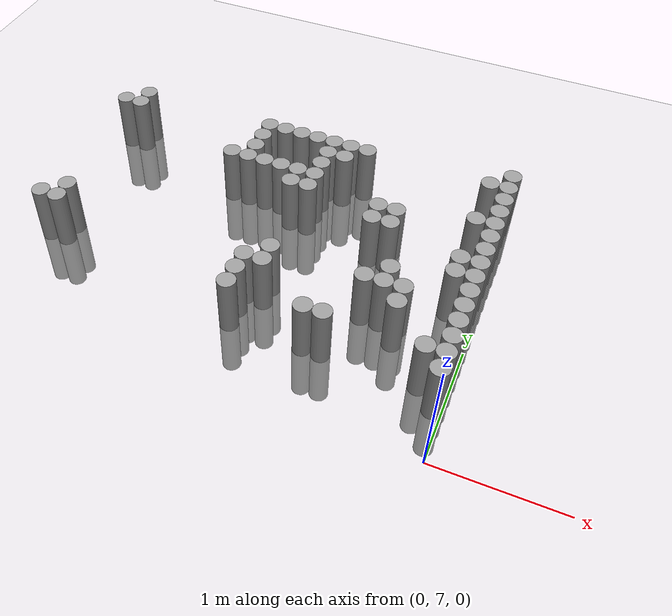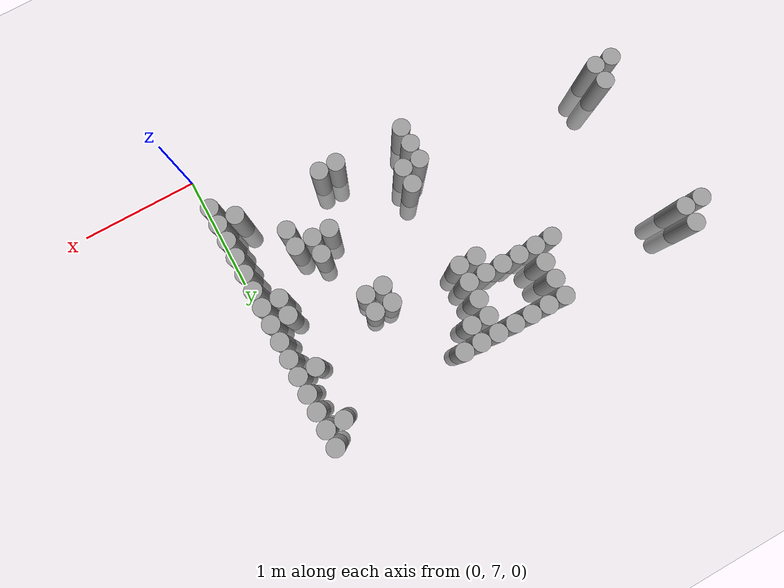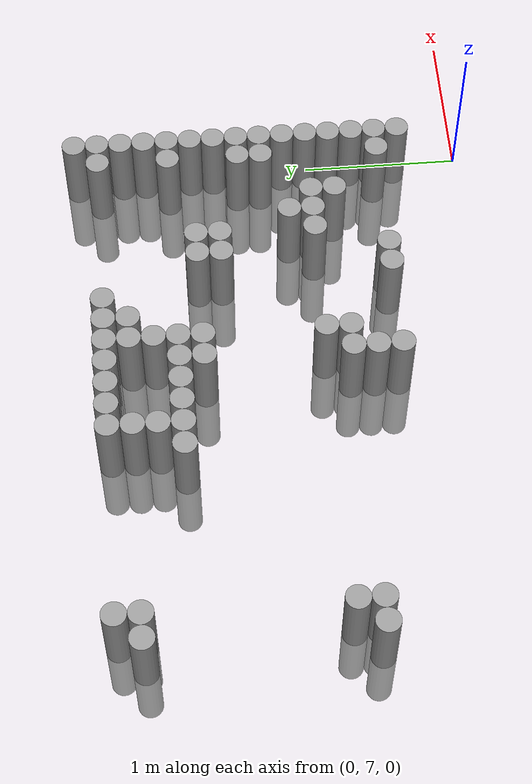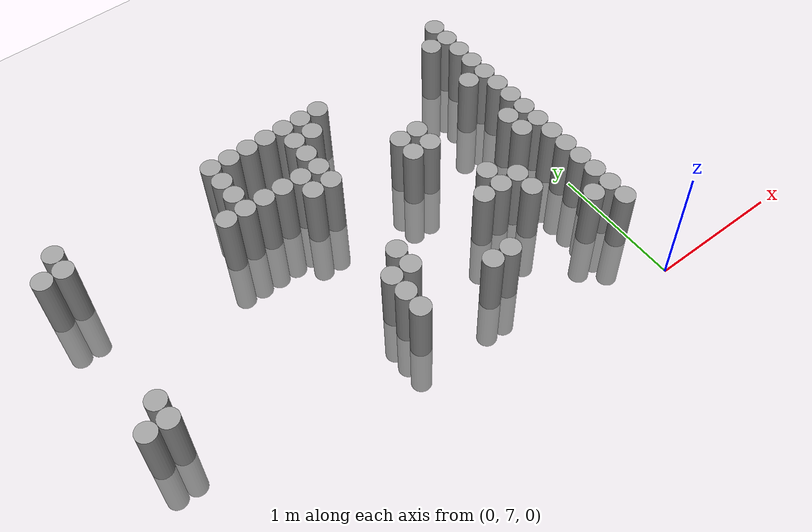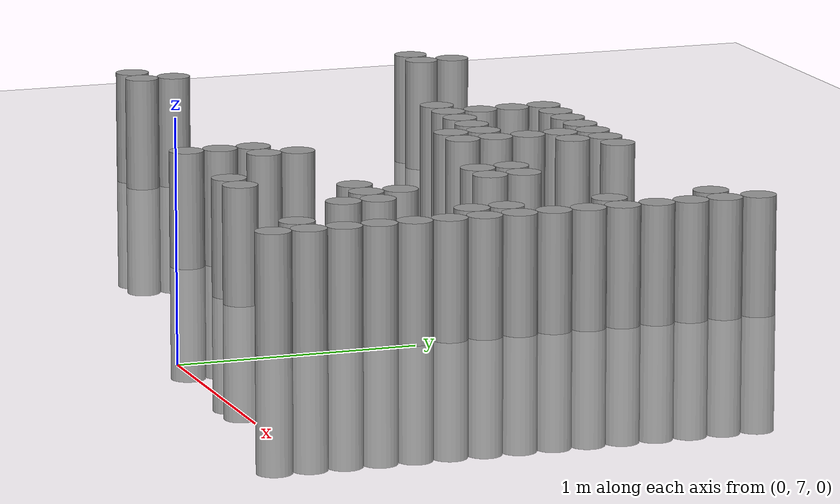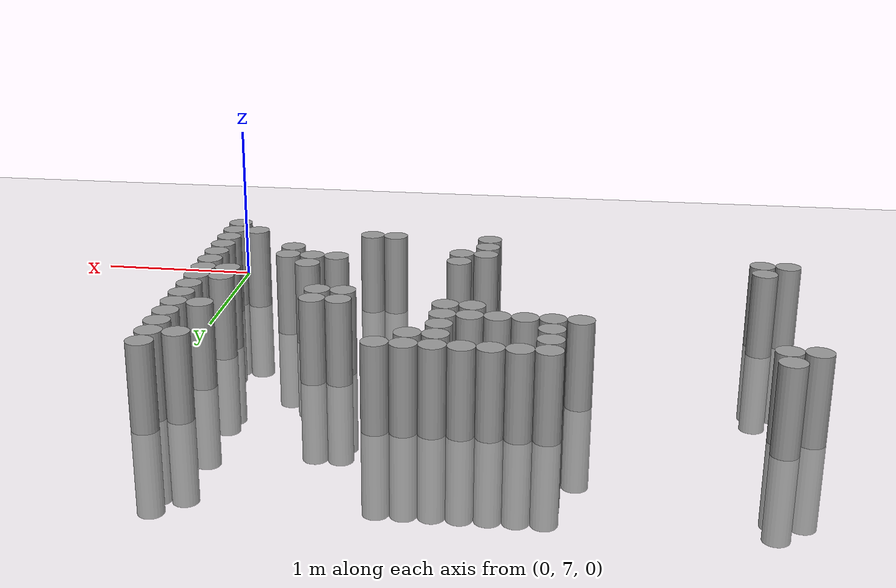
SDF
<sdf version="1.6">
 <world name="default">
  <model name="ground_plane">
   <static>1</static>
   <link name="link">
    <collision name="collision">
     <geometry><plane><normal>0 0 1</normal><size>100 100</size></plane></geometry>
     <surface><friction><ode><mu>100</mu><mu2>50</mu2></ode></friction></surface>
    </collision>
    <visual name="visual">
     <cast_shadows>0</cast_shadows>
     <geometry><plane><normal>0 0 1</normal><size>100 100</size></plane></geometry>
     <material>
      <script><uri>file://media/materials/scripts/gazebo.material</uri><name>Gazebo/Grey</name></script>
     </material>
    </visual>
   </link>
  </model>
  <model name="unit_cylinder_169">
   <pose>-3.525000 7.875000 0.000000 0.000000 0.000000 0.000000</pose>
   <link name="link">
    <inertial>
     <mass>1</mass>
     <inertia><ixx>0.145833</ixx><ixy>0</ixy><ixz>0</ixz><iyy>0.145833</iyy><iyz>0</iyz><izz>0.125</izz></inertia>
    </inertial>
    <collision name="collision">
     <geometry><cylinder><radius>0.075000</radius><length>1</length></cylinder></geometry>
    </collision>
    <visual name="visual">
     <geometry><cylinder><radius>0.075000</radius><length>1</length></cylinder></geometry>
     <material>
      <script><name>Gazebo/Grey</name><uri>file://media/materials/scripts/gazebo.material</uri></script>
     </material>
    </visual>
   </link>
  </model>
  <model name="unit_cylinder_170">
   <pose>-3.525000 9.225000 0.000000 0.000000 0.000000 0.000000</pose>
   <link name="link">
    <inertial>
     <mass>1</mass>
     <inertia><ixx>0.145833</ixx><ixy>0</ixy><ixz>0</ixz><iyy>0.145833</iyy><iyz>0</iyz><izz>0.125</izz></inertia>
    </inertial>
    <collision name="collision">
     <geometry><cylinder><radius>0.075000</radius><length>1</length></cylinder></geometry>
    </collision>
    <visual name="visual">
     <geometry><cylinder><radius>0.075000</radius><length>1</length></cylinder></geometry>
     <material>
      <script><name>Gazebo/Grey</name><uri>file://media/materials/scripts/gazebo.material</uri></script>
     </material>
    </visual>
   </link>
  </model>
  <model name="unit_cylinder_176">
   <pose>-3.375000 7.875000 0.000000 0.000000 0.000000 0.000000</pose>
   <link name="link">
    <inertial>
     <mass>1</mass>
     <inertia><ixx>0.145833</ixx><ixy>0</ixy><ixz>0</ixz><iyy>0.145833</iyy><iyz>0</iyz><izz>0.125</izz></inertia>
    </inertial>
    <collision name="collision">
     <geometry><cylinder><radius>0.075000</radius><length>1</length></cylinder></geometry>
    </collision>
    <visual name="visual">
     <geometry><cylinder><radius>0.075000</radius><length>1</length></cylinder></geometry>
     <material>
      <script><name>Gazebo/Grey</name><uri>file://media/materials/scripts/gazebo.material</uri></script>
     </material>
    </visual>
   </link>
  </model>
  <model name="unit_cylinder_177">
   <pose>-3.375000 8.025000 0.000000 0.000000 0.000000 0.000000</pose>
   <link name="link">
    <inertial>
     <mass>1</mass>
     <inertia><ixx>0.145833</ixx><ixy>0</ixy><ixz>0</ixz><iyy>0.145833</iyy><iyz>0</iyz><izz>0.125</izz></inertia>
    </inertial>
    <collision name="collision">
     <geometry><cylinder><radius>0.075000</radius><length>1</length></cylinder></geometry>
    </collision>
    <visual name="visual">
     <geometry><cylinder><radius>0.075000</radius><length>1</length></cylinder></geometry>
     <material>
      <script><name>Gazebo/Grey</name><uri>file://media/materials/scripts/gazebo.material</uri></script>
     </material>
    </visual>
   </link>
  </model>
  <model name="unit_cylinder_178">
   <pose>-3.375000 9.225000 0.000000 0.000000 0.000000 0.000000</pose>
   <link name="link">
    <inertial>
     <mass>1</mass>
     <inertia><ixx>0.145833</ixx><ixy>0</ixy><ixz>0</ixz><iyy>0.145833</iyy><iyz>0</iyz><izz>0.125</izz></inertia>
    </inertial>
    <collision name="collision">
     <geometry><cylinder><radius>0.075000</radius><length>1</length></cylinder></geometry>
    </collision>
    <visual name="visual">
     <geometry><cylinder><radius>0.075000</radius><length>1</length></cylinder></geometry>
     <material>
      <script><name>Gazebo/Grey</name><uri>file://media/materials/scripts/gazebo.material</uri></script>
     </material>
    </visual>
   </link>
  </model>
  <model name="unit_cylinder_179">
   <pose>-3.375000 9.375000 0.000000 0.000000 0.000000 0.000000</pose>
   <link name="link">
    <inertial>
     <mass>1</mass>
     <inertia><ixx>0.145833</ixx><ixy>0</ixy><ixz>0</ixz><iyy>0.145833</iyy><iyz>0</iyz><izz>0.125</izz></inertia>
    </inertial>
    <collision name="collision">
     <geometry><cylinder><radius>0.075000</radius><length>1</length></cylinder></geometry>
    </collision>
    <visual name="visual">
     <geometry><cylinder><radius>0.075000</radius><length>1</length></cylinder></geometry>
     <material>
      <script><name>Gazebo/Grey</name><uri>file://media/materials/scripts/gazebo.material</uri></script>
     </material>
    </visual>
   </link>
  </model>
  <model name="unit_cylinder_183">
   <pose>-2.325000 8.925000 0.000000 0.000000 0.000000 0.000000</pose>
   <link name="link">
    <inertial>
     <mass>1</mass>
     <inertia><ixx>0.145833</ixx><ixy>0</ixy><ixz>0</ixz><iyy>0.145833</iyy><iyz>0</iyz><izz>0.125</izz></inertia>
    </inertial>
    <collision name="collision">
     <geometry><cylinder><radius>0.075000</radius><length>1</length></cylinder></geometry>
    </collision>
    <visual name="visual">
     <geometry><cylinder><radius>0.075000</radius><length>1</length></cylinder></geometry>
     <material>
      <script><name>Gazebo/Grey</name><uri>file://media/materials/scripts/gazebo.material</uri></script>
     </material>
    </visual>
   </link>
  </model>
  <model name="unit_cylinder_189">
   <pose>-2.175000 8.925000 0.000000 0.000000 0.000000 0.000000</pose>
   <link name="link">
    <inertial>
     <mass>1</mass>
     <inertia><ixx>0.145833</ixx><ixy>0</ixy><ixz>0</ixz><iyy>0.145833</iyy><iyz>0</iyz><izz>0.125</izz></inertia>
    </inertial>
    <collision name="collision">
     <geometry><cylinder><radius>0.075000</radius><length>1</length></cylinder></geometry>
    </collision>
    <visual name="visual">
     <geometry><cylinder><radius>0.075000</radius><length>1</length></cylinder></geometry>
     <material>
      <script><name>Gazebo/Grey</name><uri>file://media/materials/scripts/gazebo.material</uri></script>
     </material>
    </visual>
   </link>
  </model>
  <model name="unit_cylinder_190">
   <pose>-2.175000 9.075000 0.000000 0.000000 0.000000 0.000000</pose>
   <link name="link">
    <inertial>
     <mass>1</mass>
     <inertia><ixx>0.145833</ixx><ixy>0</ixy><ixz>0</ixz><iyy>0.145833</iyy><iyz>0</iyz><izz>0.125</izz></inertia>
    </inertial>
    <collision name="collision">
     <geometry><cylinder><radius>0.075000</radius><length>1</length></cylinder></geometry>
    </collision>
    <visual name="visual">
     <geometry><cylinder><radius>0.075000</radius><length>1</length></cylinder></geometry>
     <material>
      <script><name>Gazebo/Grey</name><uri>file://media/materials/scripts/gazebo.material</uri></script>
     </material>
    </visual>
   </link>
  </model>
  <model name="unit_cylinder_191">
   <pose>-2.175000 9.225000 0.000000 0.000000 0.000000 0.000000</pose>
   <link name="link">
    <inertial>
     <mass>1</mass>
     <inertia><ixx>0.145833</ixx><ixy>0</ixy><ixz>0</ixz><iyy>0.145833</iyy><iyz>0</iyz><izz>0.125</izz></inertia>
    </inertial>
    <collision name="collision">
     <geometry><cylinder><radius>0.075000</radius><length>1</length></cylinder></geometry>
    </collision>
    <visual name="visual">
     <geometry><cylinder><radius>0.075000</radius><length>1</length></cylinder></geometry>
     <material>
      <script><name>Gazebo/Grey</name><uri>file://media/materials/scripts/gazebo.material</uri></script>
     </material>
    </visual>
   </link>
  </model>
  <model name="unit_cylinder_192">
   <pose>-2.175000 9.375000 0.000000 0.000000 0.000000 0.000000</pose>
   <link name="link">
    <inertial>
     <mass>1</mass>
     <inertia><ixx>0.145833</ixx><ixy>0</ixy><ixz>0</ixz><iyy>0.145833</iyy><iyz>0</iyz><izz>0.125</izz></inertia>
    </inertial>
    <collision name="collision">
     <geometry><cylinder><radius>0.075000</radius><length>1</length></cylinder></geometry>
    </collision>
    <visual name="visual">
     <geometry><cylinder><radius>0.075000</radius><length>1</length></cylinder></geometry>
     <material>
      <script><name>Gazebo/Grey</name><uri>file://media/materials/scripts/gazebo.material</uri></script>
     </material>
    </visual>
   </link>
  </model>
  <model name="unit_cylinder_196">
   <pose>-2.025000 8.925000 0.000000 0.000000 0.000000 0.000000</pose>
   <link name="link">
    <inertial>
     <mass>1</mass>
     <inertia><ixx>0.145833</ixx><ixy>0</ixy><ixz>0</ixz><iyy>0.145833</iyy><iyz>0</iyz><izz>0.125</izz></inertia>
    </inertial>
    <collision name="collision">
     <geometry><cylinder><radius>0.075000</radius><length>1</length></cylinder></geometry>
    </collision>
    <visual name="visual">
     <geometry><cylinder><radius>0.075000</radius><length>1</length></cylinder></geometry>
     <material>
      <script><name>Gazebo/Grey</name><uri>file://media/materials/scripts/gazebo.material</uri></script>
     </material>
    </visual>
   </link>
  </model>
  <model name="unit_cylinder_197">
   <pose>-2.025000 9.375000 0.000000 0.000000 0.000000 0.000000</pose>
   <link name="link">
    <inertial>
     <mass>1</mass>
     <inertia><ixx>0.145833</ixx><ixy>0</ixy><ixz>0</ixz><iyy>0.145833</iyy><iyz>0</iyz><izz>0.125</izz></inertia>
    </inertial>
    <collision name="collision">
     <geometry><cylinder><radius>0.075000</radius><length>1</length></cylinder></geometry>
    </collision>
    <visual name="visual">
     <geometry><cylinder><radius>0.075000</radius><length>1</length></cylinder></geometry>
     <material>
      <script><name>Gazebo/Grey</name><uri>file://media/materials/scripts/gazebo.material</uri></script>
     </material>
    </visual>
   </link>
  </model>
  <model name="unit_cylinder_201">
   <pose>-1.875000 8.925000 0.000000 0.000000 0.000000 0.000000</pose>
   <link name="link">
    <inertial>
     <mass>1</mass>
     <inertia><ixx>0.145833</ixx><ixy>0</ixy><ixz>0</ixz><iyy>0.145833</iyy><iyz>0</iyz><izz>0.125</izz></inertia>
    </inertial>
    <collision name="collision">
     <geometry><cylinder><radius>0.075000</radius><length>1</length></cylinder></geometry>
    </collision>
    <visual name="visual">
     <geometry><cylinder><radius>0.075000</radius><length>1</length></cylinder></geometry>
     <material>
      <script><name>Gazebo/Grey</name><uri>file://media/materials/scripts/gazebo.material</uri></script>
     </material>
    </visual>
   </link>
  </model>
  <model name="unit_cylinder_202">
   <pose>-1.875000 9.375000 0.000000 0.000000 0.000000 0.000000</pose>
   <link name="link">
    <inertial>
     <mass>1</mass>
     <inertia><ixx>0.145833</ixx><ixy>0</ixy><ixz>0</ixz><iyy>0.145833</iyy><iyz>0</iyz><izz>0.125</izz></inertia>
    </inertial>
    <collision name="collision">
     <geometry><cylinder><radius>0.075000</radius><length>1</length></cylinder></geometry>
    </collision>
    <visual name="visual">
     <geometry><cylinder><radius>0.075000</radius><length>1</length></cylinder></geometry>
     <material>
      <script><name>Gazebo/Grey</name><uri>file://media/materials/scripts/gazebo.material</uri></script>
     </material>
    </visual>
   </link>
  </model>
  <model name="unit_cylinder_209">
   <pose>-1.725000 7.575000 0.000000 0.000000 0.000000 0.000000</pose>
   <link name="link">
    <inertial>
     <mass>1</mass>
     <inertia><ixx>0.145833</ixx><ixy>0</ixy><ixz>0</ixz><iyy>0.145833</iyy><iyz>0</iyz><izz>0.125</izz></inertia>
    </inertial>
    <collision name="collision">
     <geometry><cylinder><radius>0.075000</radius><length>1</length></cylinder></geometry>
    </collision>
    <visual name="visual">
     <geometry><cylinder><radius>0.075000</radius><length>1</length></cylinder></geometry>
     <material>
      <script><name>Gazebo/Grey</name><uri>file://media/materials/scripts/gazebo.material</uri></script>
     </material>
    </visual>
   </link>
  </model>
  <model name="unit_cylinder_210">
   <pose>-1.725000 7.725000 0.000000 0.000000 0.000000 0.000000</pose>
   <link name="link">
    <inertial>
     <mass>1</mass>
     <inertia><ixx>0.145833</ixx><ixy>0</ixy><ixz>0</ixz><iyy>0.145833</iyy><iyz>0</iyz><izz>0.125</izz></inertia>
    </inertial>
    <collision name="collision">
     <geometry><cylinder><radius>0.075000</radius><length>1</length></cylinder></geometry>
    </collision>
    <visual name="visual">
     <geometry><cylinder><radius>0.075000</radius><length>1</length></cylinder></geometry>
     <material>
      <script><name>Gazebo/Grey</name><uri>file://media/materials/scripts/gazebo.material</uri></script>
     </material>
    </visual>
   </link>
  </model>
  <model name="unit_cylinder_211">
   <pose>-1.725000 7.875000 0.000000 0.000000 0.000000 0.000000</pose>
   <link name="link">
    <inertial>
     <mass>1</mass>
     <inertia><ixx>0.145833</ixx><ixy>0</ixy><ixz>0</ixz><iyy>0.145833</iyy><iyz>0</iyz><izz>0.125</izz></inertia>
    </inertial>
    <collision name="collision">
     <geometry><cylinder><radius>0.075000</radius><length>1</length></cylinder></geometry>
    </collision>
    <visual name="visual">
     <geometry><cylinder><radius>0.075000</radius><length>1</length></cylinder></geometry>
     <material>
      <script><name>Gazebo/Grey</name><uri>file://media/materials/scripts/gazebo.material</uri></script>
     </material>
    </visual>
   </link>
  </model>
  <model name="unit_cylinder_212">
   <pose>-1.725000 8.775000 0.000000 0.000000 0.000000 0.000000</pose>
   <link name="link">
    <inertial>
     <mass>1</mass>
     <inertia><ixx>0.145833</ixx><ixy>0</ixy><ixz>0</ixz><iyy>0.145833</iyy><iyz>0</iyz><izz>0.125</izz></inertia>
    </inertial>
    <collision name="collision">
     <geometry><cylinder><radius>0.075000</radius><length>1</length></cylinder></geometry>
    </collision>
    <visual name="visual">
     <geometry><cylinder><radius>0.075000</radius><length>1</length></cylinder></geometry>
     <material>
      <script><name>Gazebo/Grey</name><uri>file://media/materials/scripts/gazebo.material</uri></script>
     </material>
    </visual>
   </link>
  </model>
  <model name="unit_cylinder_213">
   <pose>-1.725000 8.925000 0.000000 0.000000 0.000000 0.000000</pose>
   <link name="link">
    <inertial>
     <mass>1</mass>
     <inertia><ixx>0.145833</ixx><ixy>0</ixy><ixz>0</ixz><iyy>0.145833</iyy><iyz>0</iyz><izz>0.125</izz></inertia>
    </inertial>
    <collision name="collision">
     <geometry><cylinder><radius>0.075000</radius><length>1</length></cylinder></geometry>
    </collision>
    <visual name="visual">
     <geometry><cylinder><radius>0.075000</radius><length>1</length></cylinder></geometry>
     <material>
      <script><name>Gazebo/Grey</name><uri>file://media/materials/scripts/gazebo.material</uri></script>
     </material>
    </visual>
   </link>
  </model>
  <model name="unit_cylinder_214">
   <pose>-1.725000 9.375000 0.000000 0.000000 0.000000 0.000000</pose>
   <link name="link">
    <inertial>
     <mass>1</mass>
     <inertia><ixx>0.145833</ixx><ixy>0</ixy><ixz>0</ixz><iyy>0.145833</iyy><iyz>0</iyz><izz>0.125</izz></inertia>
    </inertial>
    <collision name="collision">
     <geometry><cylinder><radius>0.075000</radius><length>1</length></cylinder></geometry>
    </collision>
    <visual name="visual">
     <geometry><cylinder><radius>0.075000</radius><length>1</length></cylinder></geometry>
     <material>
      <script><name>Gazebo/Grey</name><uri>file://media/materials/scripts/gazebo.material</uri></script>
     </material>
    </visual>
   </link>
  </model>
  <model name="unit_cylinder_221">
   <pose>-1.575000 7.875000 0.000000 0.000000 0.000000 0.000000</pose>
   <link name="link">
    <inertial>
     <mass>1</mass>
     <inertia><ixx>0.145833</ixx><ixy>0</ixy><ixz>0</ixz><iyy>0.145833</iyy><iyz>0</iyz><izz>0.125</izz></inertia>
    </inertial>
    <collision name="collision">
     <geometry><cylinder><radius>0.075000</radius><length>1</length></cylinder></geometry>
    </collision>
    <visual name="visual">
     <geometry><cylinder><radius>0.075000</radius><length>1</length></cylinder></geometry>
     <material>
      <script><name>Gazebo/Grey</name><uri>file://media/materials/scripts/gazebo.material</uri></script>
     </material>
    </visual>
   </link>
  </model>
  <model name="unit_cylinder_222">
   <pose>-1.575000 8.025000 0.000000 0.000000 0.000000 0.000000</pose>
   <link name="link">
    <inertial>
     <mass>1</mass>
     <inertia><ixx>0.145833</ixx><ixy>0</ixy><ixz>0</ixz><iyy>0.145833</iyy><iyz>0</iyz><izz>0.125</izz></inertia>
    </inertial>
    <collision name="collision">
     <geometry><cylinder><radius>0.075000</radius><length>1</length></cylinder></geometry>
    </collision>
    <visual name="visual">
     <geometry><cylinder><radius>0.075000</radius><length>1</length></cylinder></geometry>
     <material>
      <script><name>Gazebo/Grey</name><uri>file://media/materials/scripts/gazebo.material</uri></script>
     </material>
    </visual>
   </link>
  </model>
  <model name="unit_cylinder_223">
   <pose>-1.575000 8.775000 0.000000 0.000000 0.000000 0.000000</pose>
   <link name="link">
    <inertial>
     <mass>1</mass>
     <inertia><ixx>0.145833</ixx><ixy>0</ixy><ixz>0</ixz><iyy>0.145833</iyy><iyz>0</iyz><izz>0.125</izz></inertia>
    </inertial>
    <collision name="collision">
     <geometry><cylinder><radius>0.075000</radius><length>1</length></cylinder></geometry>
    </collision>
    <visual name="visual">
     <geometry><cylinder><radius>0.075000</radius><length>1</length></cylinder></geometry>
     <material>
      <script><name>Gazebo/Grey</name><uri>file://media/materials/scripts/gazebo.material</uri></script>
     </material>
    </visual>
   </link>
  </model>
  <model name="unit_cylinder_224">
   <pose>-1.575000 8.925000 0.000000 0.000000 0.000000 0.000000</pose>
   <link name="link">
    <inertial>
     <mass>1</mass>
     <inertia><ixx>0.145833</ixx><ixy>0</ixy><ixz>0</ixz><iyy>0.145833</iyy><iyz>0</iyz><izz>0.125</izz></inertia>
    </inertial>
    <collision name="collision">
     <geometry><cylinder><radius>0.075000</radius><length>1</length></cylinder></geometry>
    </collision>
    <visual name="visual">
     <geometry><cylinder><radius>0.075000</radius><length>1</length></cylinder></geometry>
     <material>
      <script><name>Gazebo/Grey</name><uri>file://media/materials/scripts/gazebo.material</uri></script>
     </material>
    </visual>
   </link>
  </model>
  <model name="unit_cylinder_225">
   <pose>-1.575000 9.075000 0.000000 0.000000 0.000000 0.000000</pose>
   <link name="link">
    <inertial>
     <mass>1</mass>
     <inertia><ixx>0.145833</ixx><ixy>0</ixy><ixz>0</ixz><iyy>0.145833</iyy><iyz>0</iyz><izz>0.125</izz></inertia>
    </inertial>
    <collision name="collision">
     <geometry><cylinder><radius>0.075000</radius><length>1</length></cylinder></geometry>
    </collision>
    <visual name="visual">
     <geometry><cylinder><radius>0.075000</radius><length>1</length></cylinder></geometry>
     <material>
      <script><name>Gazebo/Grey</name><uri>file://media/materials/scripts/gazebo.material</uri></script>
     </material>
    </visual>
   </link>
  </model>
  <model name="unit_cylinder_226">
   <pose>-1.575000 9.225000 0.000000 0.000000 0.000000 0.000000</pose>
   <link name="link">
    <inertial>
     <mass>1</mass>
     <inertia><ixx>0.145833</ixx><ixy>0</ixy><ixz>0</ixz><iyy>0.145833</iyy><iyz>0</iyz><izz>0.125</izz></inertia>
    </inertial>
    <collision name="collision">
     <geometry><cylinder><radius>0.075000</radius><length>1</length></cylinder></geometry>
    </collision>
    <visual name="visual">
     <geometry><cylinder><radius>0.075000</radius><length>1</length></cylinder></geometry>
     <material>
      <script><name>Gazebo/Grey</name><uri>file://media/materials/scripts/gazebo.material</uri></script>
     </material>
    </visual>
   </link>
  </model>
  <model name="unit_cylinder_227">
   <pose>-1.575000 9.375000 0.000000 0.000000 0.000000 0.000000</pose>
   <link name="link">
    <inertial>
     <mass>1</mass>
     <inertia><ixx>0.145833</ixx><ixy>0</ixy><ixz>0</ixz><iyy>0.145833</iyy><iyz>0</iyz><izz>0.125</izz></inertia>
    </inertial>
    <collision name="collision">
     <geometry><cylinder><radius>0.075000</radius><length>1</length></cylinder></geometry>
    </collision>
    <visual name="visual">
     <geometry><cylinder><radius>0.075000</radius><length>1</length></cylinder></geometry>
     <material>
      <script><name>Gazebo/Grey</name><uri>file://media/materials/scripts/gazebo.material</uri></script>
     </material>
    </visual>
   </link>
  </model>
  <model name="unit_cylinder_231">
   <pose>-1.425000 9.225000 0.000000 0.000000 0.000000 0.000000</pose>
   <link name="link">
    <inertial>
     <mass>1</mass>
     <inertia><ixx>0.145833</ixx><ixy>0</ixy><ixz>0</ixz><iyy>0.145833</iyy><iyz>0</iyz><izz>0.125</izz></inertia>
    </inertial>
    <collision name="collision">
     <geometry><cylinder><radius>0.075000</radius><length>1</length></cylinder></geometry>
    </collision>
    <visual name="visual">
     <geometry><cylinder><radius>0.075000</radius><length>1</length></cylinder></geometry>
     <material>
      <script><name>Gazebo/Grey</name><uri>file://media/materials/scripts/gazebo.material</uri></script>
     </material>
    </visual>
   </link>
  </model>
  <model name="unit_cylinder_232">
   <pose>-1.425000 9.375000 0.000000 0.000000 0.000000 0.000000</pose>
   <link name="link">
    <inertial>
     <mass>1</mass>
     <inertia><ixx>0.145833</ixx><ixy>0</ixy><ixz>0</ixz><iyy>0.145833</iyy><iyz>0</iyz><izz>0.125</izz></inertia>
    </inertial>
    <collision name="collision">
     <geometry><cylinder><radius>0.075000</radius><length>1</length></cylinder></geometry>
    </collision>
    <visual name="visual">
     <geometry><cylinder><radius>0.075000</radius><length>1</length></cylinder></geometry>
     <material>
      <script><name>Gazebo/Grey</name><uri>file://media/materials/scripts/gazebo.material</uri></script>
     </material>
    </visual>
   </link>
  </model>
  <model name="unit_cylinder_234">
   <pose>-1.275000 9.375000 0.000000 0.000000 0.000000 0.000000</pose>
   <link name="link">
    <inertial>
     <mass>1</mass>
     <inertia><ixx>0.145833</ixx><ixy>0</ixy><ixz>0</ixz><iyy>0.145833</iyy><iyz>0</iyz><izz>0.125</izz></inertia>
    </inertial>
    <collision name="collision">
     <geometry><cylinder><radius>0.075000</radius><length>1</length></cylinder></geometry>
    </collision>
    <visual name="visual">
     <geometry><cylinder><radius>0.075000</radius><length>1</length></cylinder></geometry>
     <material>
      <script><name>Gazebo/Grey</name><uri>file://media/materials/scripts/gazebo.material</uri></script>
     </material>
    </visual>
   </link>
  </model>
  <model name="unit_cylinder_241">
   <pose>-1.125000 7.575000 0.000000 0.000000 0.000000 0.000000</pose>
   <link name="link">
    <inertial>
     <mass>1</mass>
     <inertia><ixx>0.145833</ixx><ixy>0</ixy><ixz>0</ixz><iyy>0.145833</iyy><iyz>0</iyz><izz>0.125</izz></inertia>
    </inertial>
    <collision name="collision">
     <geometry><cylinder><radius>0.075000</radius><length>1</length></cylinder></geometry>
    </collision>
    <visual name="visual">
     <geometry><cylinder><radius>0.075000</radius><length>1</length></cylinder></geometry>
     <material>
      <script><name>Gazebo/Grey</name><uri>file://media/materials/scripts/gazebo.material</uri></script>
     </material>
    </visual>
   </link>
  </model>
  <model name="unit_cylinder_247">
   <pose>-0.975000 7.575000 0.000000 0.000000 0.000000 0.000000</pose>
   <link name="link">
    <inertial>
     <mass>1</mass>
     <inertia><ixx>0.145833</ixx><ixy>0</ixy><ixz>0</ixz><iyy>0.145833</iyy><iyz>0</iyz><izz>0.125</izz></inertia>
    </inertial>
    <collision name="collision">
     <geometry><cylinder><radius>0.075000</radius><length>1</length></cylinder></geometry>
    </collision>
    <visual name="visual">
     <geometry><cylinder><radius>0.075000</radius><length>1</length></cylinder></geometry>
     <material>
      <script><name>Gazebo/Grey</name><uri>file://media/materials/scripts/gazebo.material</uri></script>
     </material>
    </visual>
   </link>
  </model>
  <model name="unit_cylinder_248">
   <pose>-0.975000 8.625000 0.000000 0.000000 0.000000 0.000000</pose>
   <link name="link">
    <inertial>
     <mass>1</mass>
     <inertia><ixx>0.145833</ixx><ixy>0</ixy><ixz>0</ixz><iyy>0.145833</iyy><iyz>0</iyz><izz>0.125</izz></inertia>
    </inertial>
    <collision name="collision">
     <geometry><cylinder><radius>0.075000</radius><length>1</length></cylinder></geometry>
    </collision>
    <visual name="visual">
     <geometry><cylinder><radius>0.075000</radius><length>1</length></cylinder></geometry>
     <material>
      <script><name>Gazebo/Grey</name><uri>file://media/materials/scripts/gazebo.material</uri></script>
     </material>
    </visual>
   </link>
  </model>
  <model name="unit_cylinder_249">
   <pose>-0.975000 8.775000 0.000000 0.000000 0.000000 0.000000</pose>
   <link name="link">
    <inertial>
     <mass>1</mass>
     <inertia><ixx>0.145833</ixx><ixy>0</ixy><ixz>0</ixz><iyy>0.145833</iyy><iyz>0</iyz><izz>0.125</izz></inertia>
    </inertial>
    <collision name="collision">
     <geometry><cylinder><radius>0.075000</radius><length>1</length></cylinder></geometry>
    </collision>
    <visual name="visual">
     <geometry><cylinder><radius>0.075000</radius><length>1</length></cylinder></geometry>
     <material>
      <script><name>Gazebo/Grey</name><uri>file://media/materials/scripts/gazebo.material</uri></script>
     </material>
    </visual>
   </link>
  </model>
  <model name="unit_cylinder_251">
   <pose>-0.825000 8.025000 0.000000 0.000000 0.000000 0.000000</pose>
   <link name="link">
    <inertial>
     <mass>1</mass>
     <inertia><ixx>0.145833</ixx><ixy>0</ixy><ixz>0</ixz><iyy>0.145833</iyy><iyz>0</iyz><izz>0.125</izz></inertia>
    </inertial>
    <collision name="collision">
     <geometry><cylinder><radius>0.075000</radius><length>1</length></cylinder></geometry>
    </collision>
    <visual name="visual">
     <geometry><cylinder><radius>0.075000</radius><length>1</length></cylinder></geometry>
     <material>
      <script><name>Gazebo/Grey</name><uri>file://media/materials/scripts/gazebo.material</uri></script>
     </material>
    </visual>
   </link>
  </model>
  <model name="unit_cylinder_252">
   <pose>-0.825000 8.625000 0.000000 0.000000 0.000000 0.000000</pose>
   <link name="link">
    <inertial>
     <mass>1</mass>
     <inertia><ixx>0.145833</ixx><ixy>0</ixy><ixz>0</ixz><iyy>0.145833</iyy><iyz>0</iyz><izz>0.125</izz></inertia>
    </inertial>
    <collision name="collision">
     <geometry><cylinder><radius>0.075000</radius><length>1</length></cylinder></geometry>
    </collision>
    <visual name="visual">
     <geometry><cylinder><radius>0.075000</radius><length>1</length></cylinder></geometry>
     <material>
      <script><name>Gazebo/Grey</name><uri>file://media/materials/scripts/gazebo.material</uri></script>
     </material>
    </visual>
   </link>
  </model>
  <model name="unit_cylinder_253">
   <pose>-0.825000 8.775000 0.000000 0.000000 0.000000 0.000000</pose>
   <link name="link">
    <inertial>
     <mass>1</mass>
     <inertia><ixx>0.145833</ixx><ixy>0</ixy><ixz>0</ixz><iyy>0.145833</iyy><iyz>0</iyz><izz>0.125</izz></inertia>
    </inertial>
    <collision name="collision">
     <geometry><cylinder><radius>0.075000</radius><length>1</length></cylinder></geometry>
    </collision>
    <visual name="visual">
     <geometry><cylinder><radius>0.075000</radius><length>1</length></cylinder></geometry>
     <material>
      <script><name>Gazebo/Grey</name><uri>file://media/materials/scripts/gazebo.material</uri></script>
     </material>
    </visual>
   </link>
  </model>
  <model name="unit_cylinder_254">
   <pose>-0.675000 8.025000 0.000000 0.000000 0.000000 0.000000</pose>
   <link name="link">
    <inertial>
     <mass>1</mass>
     <inertia><ixx>0.145833</ixx><ixy>0</ixy><ixz>0</ixz><iyy>0.145833</iyy><iyz>0</iyz><izz>0.125</izz></inertia>
    </inertial>
    <collision name="collision">
     <geometry><cylinder><radius>0.075000</radius><length>1</length></cylinder></geometry>
    </collision>
    <visual name="visual">
     <geometry><cylinder><radius>0.075000</radius><length>1</length></cylinder></geometry>
     <material>
      <script><name>Gazebo/Grey</name><uri>file://media/materials/scripts/gazebo.material</uri></script>
     </material>
    </visual>
   </link>
  </model>
  <model name="unit_cylinder_255">
   <pose>-0.675000 8.175000 0.000000 0.000000 0.000000 0.000000</pose>
   <link name="link">
    <inertial>
     <mass>1</mass>
     <inertia><ixx>0.145833</ixx><ixy>0</ixy><ixz>0</ixz><iyy>0.145833</iyy><iyz>0</iyz><izz>0.125</izz></inertia>
    </inertial>
    <collision name="collision">
     <geometry><cylinder><radius>0.075000</radius><length>1</length></cylinder></geometry>
    </collision>
    <visual name="visual">
     <geometry><cylinder><radius>0.075000</radius><length>1</length></cylinder></geometry>
     <material>
      <script><name>Gazebo/Grey</name><uri>file://media/materials/scripts/gazebo.material</uri></script>
     </material>
    </visual>
   </link>
  </model>
  <model name="unit_cylinder_256">
   <pose>-0.525000 7.875000 0.000000 0.000000 0.000000 0.000000</pose>
   <link name="link">
    <inertial>
     <mass>1</mass>
     <inertia><ixx>0.145833</ixx><ixy>0</ixy><ixz>0</ixz><iyy>0.145833</iyy><iyz>0</iyz><izz>0.125</izz></inertia>
    </inertial>
    <collision name="collision">
     <geometry><cylinder><radius>0.075000</radius><length>1</length></cylinder></geometry>
    </collision>
    <visual name="visual">
     <geometry><cylinder><radius>0.075000</radius><length>1</length></cylinder></geometry>
     <material>
      <script><name>Gazebo/Grey</name><uri>file://media/materials/scripts/gazebo.material</uri></script>
     </material>
    </visual>
   </link>
  </model>
  <model name="unit_cylinder_257">
   <pose>-0.525000 8.025000 0.000000 0.000000 0.000000 0.000000</pose>
   <link name="link">
    <inertial>
     <mass>1</mass>
     <inertia><ixx>0.145833</ixx><ixy>0</ixy><ixz>0</ixz><iyy>0.145833</iyy><iyz>0</iyz><izz>0.125</izz></inertia>
    </inertial>
    <collision name="collision">
     <geometry><cylinder><radius>0.075000</radius><length>1</length></cylinder></geometry>
    </collision>
    <visual name="visual">
     <geometry><cylinder><radius>0.075000</radius><length>1</length></cylinder></geometry>
     <material>
      <script><name>Gazebo/Grey</name><uri>file://media/materials/scripts/gazebo.material</uri></script>
     </material>
    </visual>
   </link>
  </model>
  <model name="unit_cylinder_274">
   <pose>-0.225000 7.575000 0.000000 0.000000 0.000000 0.000000</pose>
   <link name="link">
    <inertial>
     <mass>1</mass>
     <inertia><ixx>0.145833</ixx><ixy>0</ixy><ixz>0</ixz><iyy>0.145833</iyy><iyz>0</iyz><izz>0.125</izz></inertia>
    </inertial>
    <collision name="collision">
     <geometry><cylinder><radius>0.075000</radius><length>1</length></cylinder></geometry>
    </collision>
    <visual name="visual">
     <geometry><cylinder><radius>0.075000</radius><length>1</length></cylinder></geometry>
     <material>
      <script><name>Gazebo/Grey</name><uri>file://media/materials/scripts/gazebo.material</uri></script>
     </material>
    </visual>
   </link>
  </model>
  <model name="unit_cylinder_275">
   <pose>-0.225000 8.325000 0.000000 0.000000 0.000000 0.000000</pose>
   <link name="link">
    <inertial>
     <mass>1</mass>
     <inertia><ixx>0.145833</ixx><ixy>0</ixy><ixz>0</ixz><iyy>0.145833</iyy><iyz>0</iyz><izz>0.125</izz></inertia>
    </inertial>
    <collision name="collision">
     <geometry><cylinder><radius>0.075000</radius><length>1</length></cylinder></geometry>
    </collision>
    <visual name="visual">
     <geometry><cylinder><radius>0.075000</radius><length>1</length></cylinder></geometry>
     <material>
      <script><name>Gazebo/Grey</name><uri>file://media/materials/scripts/gazebo.material</uri></script>
     </material>
    </visual>
   </link>
  </model>
  <model name="unit_cylinder_276">
   <pose>-0.225000 8.475000 0.000000 0.000000 0.000000 0.000000</pose>
   <link name="link">
    <inertial>
     <mass>1</mass>
     <inertia><ixx>0.145833</ixx><ixy>0</ixy><ixz>0</ixz><iyy>0.145833</iyy><iyz>0</iyz><izz>0.125</izz></inertia>
    </inertial>
    <collision name="collision">
     <geometry><cylinder><radius>0.075000</radius><length>1</length></cylinder></geometry>
    </collision>
    <visual name="visual">
     <geometry><cylinder><radius>0.075000</radius><length>1</length></cylinder></geometry>
     <material>
      <script><name>Gazebo/Grey</name><uri>file://media/materials/scripts/gazebo.material</uri></script>
     </material>
    </visual>
   </link>
  </model>
  <model name="unit_cylinder_277">
   <pose>-0.225000 8.925000 0.000000 0.000000 0.000000 0.000000</pose>
   <link name="link">
    <inertial>
     <mass>1</mass>
     <inertia><ixx>0.145833</ixx><ixy>0</ixy><ixz>0</ixz><iyy>0.145833</iyy><iyz>0</iyz><izz>0.125</izz></inertia>
    </inertial>
    <collision name="collision">
     <geometry><cylinder><radius>0.075000</radius><length>1</length></cylinder></geometry>
    </collision>
    <visual name="visual">
     <geometry><cylinder><radius>0.075000</radius><length>1</length></cylinder></geometry>
     <material>
      <script><name>Gazebo/Grey</name><uri>file://media/materials/scripts/gazebo.material</uri></script>
     </material>
    </visual>
   </link>
  </model>
  <model name="unit_cylinder_278">
   <pose>-0.225000 9.375000 0.000000 0.000000 0.000000 0.000000</pose>
   <link name="link">
    <inertial>
     <mass>1</mass>
     <inertia><ixx>0.145833</ixx><ixy>0</ixy><ixz>0</ixz><iyy>0.145833</iyy><iyz>0</iyz><izz>0.125</izz></inertia>
    </inertial>
    <collision name="collision">
     <geometry><cylinder><radius>0.075000</radius><length>1</length></cylinder></geometry>
    </collision>
    <visual name="visual">
     <geometry><cylinder><radius>0.075000</radius><length>1</length></cylinder></geometry>
     <material>
      <script><name>Gazebo/Grey</name><uri>file://media/materials/scripts/gazebo.material</uri></script>
     </material>
    </visual>
   </link>
  </model>
  <model name="unit_cylinder_294">
   <pose>-0.075000 7.425000 0.000000 0.000000 0.000000 0.000000</pose>
   <link name="link">
    <inertial>
     <mass>1</mass>
     <inertia><ixx>0.145833</ixx><ixy>0</ixy><ixz>0</ixz><iyy>0.145833</iyy><iyz>0</iyz><izz>0.125</izz></inertia>
    </inertial>
    <collision name="collision">
     <geometry><cylinder><radius>0.075000</radius><length>1</length></cylinder></geometry>
    </collision>
    <visual name="visual">
     <geometry><cylinder><radius>0.075000</radius><length>1</length></cylinder></geometry>
     <material>
      <script><name>Gazebo/Grey</name><uri>file://media/materials/scripts/gazebo.material</uri></script>
     </material>
    </visual>
   </link>
  </model>
  <model name="unit_cylinder_295">
   <pose>-0.075000 7.575000 0.000000 0.000000 0.000000 0.000000</pose>
   <link name="link">
    <inertial>
     <mass>1</mass>
     <inertia><ixx>0.145833</ixx><ixy>0</ixy><ixz>0</ixz><iyy>0.145833</iyy><iyz>0</iyz><izz>0.125</izz></inertia>
    </inertial>
    <collision name="collision">
     <geometry><cylinder><radius>0.075000</radius><length>1</length></cylinder></geometry>
    </collision>
    <visual name="visual">
     <geometry><cylinder><radius>0.075000</radius><length>1</length></cylinder></geometry>
     <material>
      <script><name>Gazebo/Grey</name><uri>file://media/materials/scripts/gazebo.material</uri></script>
     </material>
    </visual>
   </link>
  </model>
  <model name="unit_cylinder_296">
   <pose>-0.075000 7.725000 0.000000 0.000000 0.000000 0.000000</pose>
   <link name="link">
    <inertial>
     <mass>1</mass>
     <inertia><ixx>0.145833</ixx><ixy>0</ixy><ixz>0</ixz><iyy>0.145833</iyy><iyz>0</iyz><izz>0.125</izz></inertia>
    </inertial>
    <collision name="collision">
     <geometry><cylinder><radius>0.075000</radius><length>1</length></cylinder></geometry>
    </collision>
    <visual name="visual">
     <geometry><cylinder><radius>0.075000</radius><length>1</length></cylinder></geometry>
     <material>
      <script><name>Gazebo/Grey</name><uri>file://media/materials/scripts/gazebo.material</uri></script>
     </material>
    </visual>
   </link>
  </model>
  <model name="unit_cylinder_297">
   <pose>-0.075000 7.875000 0.000000 0.000000 0.000000 0.000000</pose>
   <link name="link">
    <inertial>
     <mass>1</mass>
     <inertia><ixx>0.145833</ixx><ixy>0</ixy><ixz>0</ixz><iyy>0.145833</iyy><iyz>0</iyz><izz>0.125</izz></inertia>
    </inertial>
    <collision name="collision">
     <geometry><cylinder><radius>0.075000</radius><length>1</length></cylinder></geometry>
    </collision>
    <visual name="visual">
     <geometry><cylinder><radius>0.075000</radius><length>1</length></cylinder></geometry>
     <material>
      <script><name>Gazebo/Grey</name><uri>file://media/materials/scripts/gazebo.material</uri></script>
     </material>
    </visual>
   </link>
  </model>
  <model name="unit_cylinder_298">
   <pose>-0.075000 8.025000 0.000000 0.000000 0.000000 0.000000</pose>
   <link name="link">
    <inertial>
     <mass>1</mass>
     <inertia><ixx>0.145833</ixx><ixy>0</ixy><ixz>0</ixz><iyy>0.145833</iyy><iyz>0</iyz><izz>0.125</izz></inertia>
    </inertial>
    <collision name="collision">
     <geometry><cylinder><radius>0.075000</radius><length>1</length></cylinder></geometry>
    </collision>
    <visual name="visual">
     <geometry><cylinder><radius>0.075000</radius><length>1</length></cylinder></geometry>
     <material>
      <script><name>Gazebo/Grey</name><uri>file://media/materials/scripts/gazebo.material</uri></script>
     </material>
    </visual>
   </link>
  </model>
  <model name="unit_cylinder_299">
   <pose>-0.075000 8.175000 0.000000 0.000000 0.000000 0.000000</pose>
   <link name="link">
    <inertial>
     <mass>1</mass>
     <inertia><ixx>0.145833</ixx><ixy>0</ixy><ixz>0</ixz><iyy>0.145833</iyy><iyz>0</iyz><izz>0.125</izz></inertia>
    </inertial>
    <collision name="collision">
     <geometry><cylinder><radius>0.075000</radius><length>1</length></cylinder></geometry>
    </collision>
    <visual name="visual">
     <geometry><cylinder><radius>0.075000</radius><length>1</length></cylinder></geometry>
     <material>
      <script><name>Gazebo/Grey</name><uri>file://media/materials/scripts/gazebo.material</uri></script>
     </material>
    </visual>
   </link>
  </model>
  <model name="unit_cylinder_300">
   <pose>-0.075000 8.325000 0.000000 0.000000 0.000000 0.000000</pose>
   <link name="link">
    <inertial>
     <mass>1</mass>
     <inertia><ixx>0.145833</ixx><ixy>0</ixy><ixz>0</ixz><iyy>0.145833</iyy><iyz>0</iyz><izz>0.125</izz></inertia>
    </inertial>
    <collision name="collision">
     <geometry><cylinder><radius>0.075000</radius><length>1</length></cylinder></geometry>
    </collision>
    <visual name="visual">
     <geometry><cylinder><radius>0.075000</radius><length>1</length></cylinder></geometry>
     <material>
      <script><name>Gazebo/Grey</name><uri>file://media/materials/scripts/gazebo.material</uri></script>
     </material>
    </visual>
   </link>
  </model>
  <model name="unit_cylinder_301">
   <pose>-0.075000 8.475000 0.000000 0.000000 0.000000 0.000000</pose>
   <link name="link">
    <inertial>
     <mass>1</mass>
     <inertia><ixx>0.145833</ixx><ixy>0</ixy><ixz>0</ixz><iyy>0.145833</iyy><iyz>0</iyz><izz>0.125</izz></inertia>
    </inertial>
    <collision name="collision">
     <geometry><cylinder><radius>0.075000</radius><length>1</length></cylinder></geometry>
    </collision>
    <visual name="visual">
     <geometry><cylinder><radius>0.075000</radius><length>1</length></cylinder></geometry>
     <material>
      <script><name>Gazebo/Grey</name><uri>file://media/materials/scripts/gazebo.material</uri></script>
     </material>
    </visual>
   </link>
  </model>
  <model name="unit_cylinder_302">
   <pose>-0.075000 8.625000 0.000000 0.000000 0.000000 0.000000</pose>
   <link name="link">
    <inertial>
     <mass>1</mass>
     <inertia><ixx>0.145833</ixx><ixy>0</ixy><ixz>0</ixz><iyy>0.145833</iyy><iyz>0</iyz><izz>0.125</izz></inertia>
    </inertial>
    <collision name="collision">
     <geometry><cylinder><radius>0.075000</radius><length>1</length></cylinder></geometry>
    </collision>
    <visual name="visual">
     <geometry><cylinder><radius>0.075000</radius><length>1</length></cylinder></geometry>
     <material>
      <script><name>Gazebo/Grey</name><uri>file://media/materials/scripts/gazebo.material</uri></script>
     </material>
    </visual>
   </link>
  </model>
  <model name="unit_cylinder_303">
   <pose>-0.075000 8.775000 0.000000 0.000000 0.000000 0.000000</pose>
   <link name="link">
    <inertial>
     <mass>1</mass>
     <inertia><ixx>0.145833</ixx><ixy>0</ixy><ixz>0</ixz><iyy>0.145833</iyy><iyz>0</iyz><izz>0.125</izz></inertia>
    </inertial>
    <collision name="collision">
     <geometry><cylinder><radius>0.075000</radius><length>1</length></cylinder></geometry>
    </collision>
    <visual name="visual">
     <geometry><cylinder><radius>0.075000</radius><length>1</length></cylinder></geometry>
     <material>
      <script><name>Gazebo/Grey</name><uri>file://media/materials/scripts/gazebo.material</uri></script>
     </material>
    </visual>
   </link>
  </model>
  <model name="unit_cylinder_304">
   <pose>-0.075000 8.925000 0.000000 0.000000 0.000000 0.000000</pose>
   <link name="link">
    <inertial>
     <mass>1</mass>
     <inertia><ixx>0.145833</ixx><ixy>0</ixy><ixz>0</ixz><iyy>0.145833</iyy><iyz>0</iyz><izz>0.125</izz></inertia>
    </inertial>
    <collision name="collision">
     <geometry><cylinder><radius>0.075000</radius><length>1</length></cylinder></geometry>
    </collision>
    <visual name="visual">
     <geometry><cylinder><radius>0.075000</radius><length>1</length></cylinder></geometry>
     <material>
      <script><name>Gazebo/Grey</name><uri>file://media/materials/scripts/gazebo.material</uri></script>
     </material>
    </visual>
   </link>
  </model>
  <model name="unit_cylinder_305">
   <pose>-0.075000 9.075000 0.000000 0.000000 0.000000 0.000000</pose>
   <link name="link">
    <inertial>
     <mass>1</mass>
     <inertia><ixx>0.145833</ixx><ixy>0</ixy><ixz>0</ixz><iyy>0.145833</iyy><iyz>0</iyz><izz>0.125</izz></inertia>
    </inertial>
    <collision name="collision">
     <geometry><cylinder><radius>0.075000</radius><length>1</length></cylinder></geometry>
    </collision>
    <visual name="visual">
     <geometry><cylinder><radius>0.075000</radius><length>1</length></cylinder></geometry>
     <material>
      <script><name>Gazebo/Grey</name><uri>file://media/materials/scripts/gazebo.material</uri></script>
     </material>
    </visual>
   </link>
  </model>
  <model name="unit_cylinder_306">
   <pose>-0.075000 9.225000 0.000000 0.000000 0.000000 0.000000</pose>
   <link name="link">
    <inertial>
     <mass>1</mass>
     <inertia><ixx>0.145833</ixx><ixy>0</ixy><ixz>0</ixz><iyy>0.145833</iyy><iyz>0</iyz><izz>0.125</izz></inertia>
    </inertial>
    <collision name="collision">
     <geometry><cylinder><radius>0.075000</radius><length>1</length></cylinder></geometry>
    </collision>
    <visual name="visual">
     <geometry><cylinder><radius>0.075000</radius><length>1</length></cylinder></geometry>
     <material>
      <script><name>Gazebo/Grey</name><uri>file://media/materials/scripts/gazebo.material</uri></script>
     </material>
    </visual>
   </link>
  </model>
  <model name="unit_cylinder_307">
   <pose>-0.075000 9.375000 0.000000 0.000000 0.000000 0.000000</pose>
   <link name="link">
    <inertial>
     <mass>1</mass>
     <inertia><ixx>0.145833</ixx><ixy>0</ixy><ixz>0</ixz><iyy>0.145833</iyy><iyz>0</iyz><izz>0.125</izz></inertia>
    </inertial>
    <collision name="collision">
     <geometry><cylinder><radius>0.075000</radius><length>1</length></cylinder></geometry>
    </collision>
    <visual name="visual">
     <geometry><cylinder><radius>0.075000</radius><length>1</length></cylinder></geometry>
     <material>
      <script><name>Gazebo/Grey</name><uri>file://media/materials/scripts/gazebo.material</uri></script>
     </material>
    </visual>
   </link>
  </model>
  <model name="unit_cylinder_308">
   <pose>-0.075000 9.525000 0.000000 0.000000 0.000000 0.000000</pose>
   <link name="link">
    <inertial>
     <mass>1</mass>
     <inertia><ixx>0.145833</ixx><ixy>0</ixy><ixz>0</ixz><iyy>0.145833</iyy><iyz>0</iyz><izz>0.125</izz></inertia>
    </inertial>
    <collision name="collision">
     <geometry><cylinder><radius>0.075000</radius><length>1</length></cylinder></geometry>
    </collision>
    <visual name="visual">
     <geometry><cylinder><radius>0.075000</radius><length>1</length></cylinder></geometry>
     <material>
      <script><name>Gazebo/Grey</name><uri>file://media/materials/scripts/gazebo.material</uri></script>
     </material>
    </visual>
   </link>
  </model>
 </world>
</sdf>
